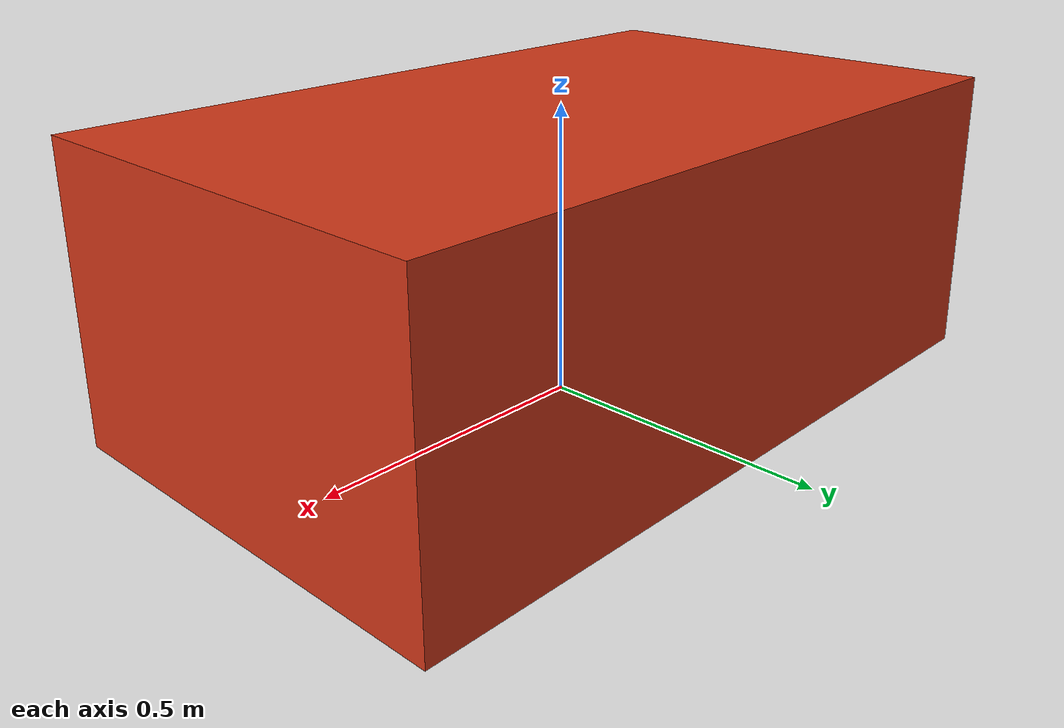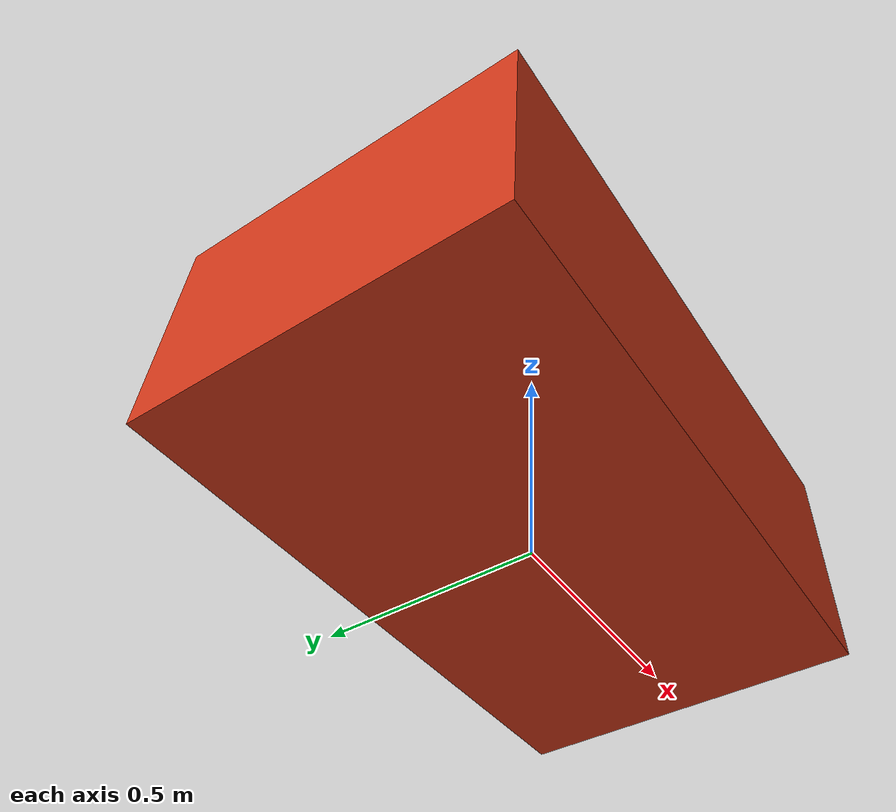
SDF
<?xml version="1.0"?>
<sdf version="1.10">
  <model name="vehicle_box">
    <static>true</static>
    <link name="box_link">
      <pose>0 0 0.25 0 0 0</pose>
      <collision name="collision">
        <geometry><box><size>1.30 0.78 0.50</size></box></geometry>
      </collision>
      <visual name="visual">
        <geometry><box><size>1.30 0.78 0.50</size></box></geometry>
        <material>
          <ambient>0.72 0.18 0.08 1</ambient>
          <diffuse>0.82 0.22 0.10 1</diffuse>
          <roughness><metalness>0.0</metalness><roughness>0.75</roughness></roughness>
        </material>
      </visual>
    </link>
  </model>
</sdf>
